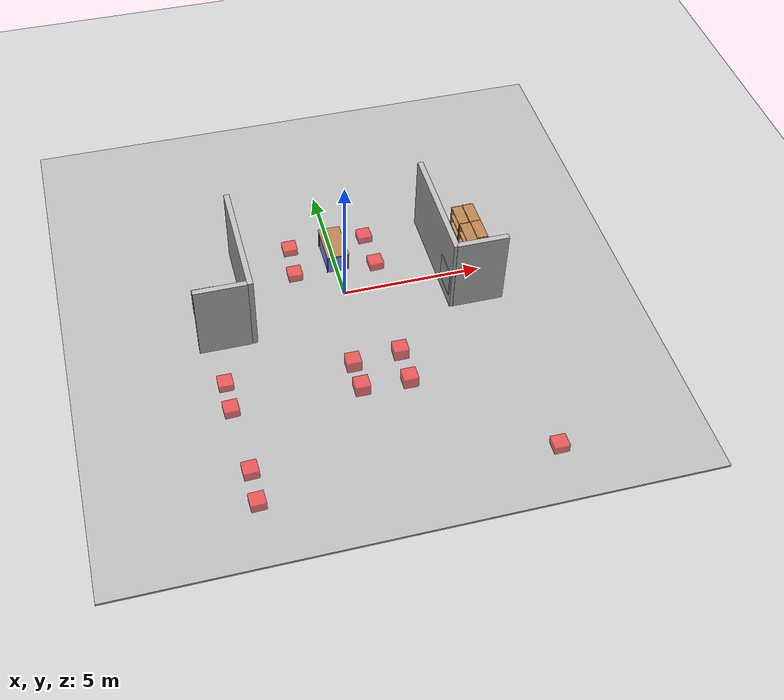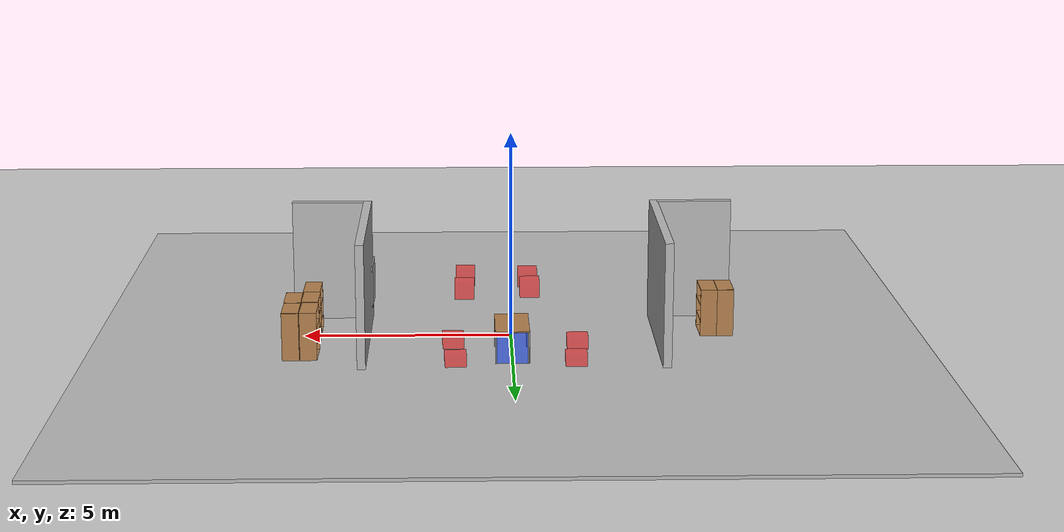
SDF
<sdf version="1.7">
 <world name="library_world">
  <model name="ground_plane">
   <static>1</static>
   <link name="link">
    <collision name="collision">
     <geometry><plane><normal>0 0 1</normal><size>100 100</size></plane></geometry>
     <surface>
      <contact><collide_bitmask>65535</collide_bitmask></contact>
      <friction><ode><mu>100</mu><mu2>50</mu2></ode></friction>
     </surface>
    </collision>
    <visual name="visual">
     <cast_shadows>0</cast_shadows>
     <geometry><plane><normal>0 0 1</normal><size>100 100</size></plane></geometry>
     <material>
      <script><uri>file://media/materials/scripts/gazebo.material</uri><name>Gazebo/Grey</name></script>
     </material>
    </visual>
   </link>
  </model>
  <model name="floor">
   <static>1</static>
   <link name="link">
    <collision name="collision"><geometry><box><size>20 20 0.1</size></box></geometry></collision>
    <visual name="visual"><geometry><box><size>20 20 0.1</size></box></geometry></visual>
   </link>
   <pose>0.030291 -0.166177 0 0 -0 0</pose>
  </model>
  <model name="bookshelf_0_clone_2_clone_27">
   <static>1</static>
   <link name="link">
    <inertial><mass>1</mass></inertial>
    <collision name="back">
     <pose>0 0.005 0.6 0 -0 0</pose>
     <geometry><box><size>0.9 0.01 1.2</size></box></geometry>
    </collision>
    <visual name="visual1">
     <pose>0 0.005 0.6 0 -0 0</pose>
     <geometry><box><size>0.9 0.01 1.2</size></box></geometry>
     <material>
      <script><uri>file://media/materials/scripts/gazebo.material</uri><name>Gazebo/Wood</name></script>
     </material>
    </visual>
    <collision name="left_side">
     <pose>0.45 -0.195 0.6 0 -0 0</pose>
     <geometry><box><size>0.02 0.4 1.2</size></box></geometry>
    </collision>
    <visual name="visual2">
     <pose>0.45 -0.195 0.6 0 -0 0</pose>
     <geometry><box><size>0.02 0.4 1.2</size></box></geometry>
     <material>
      <script><uri>file://media/materials/scripts/gazebo.material</uri><name>Gazebo/Wood</name></script>
     </material>
    </visual>
    <collision name="right_side">
     <pose>-0.45 -0.195 0.6 0 -0 0</pose>
     <geometry><box><size>0.02 0.4 1.2</size></box></geometry>
    </collision>
    <visual name="visual3">
     <pose>-0.45 -0.195 0.6 0 -0 0</pose>
     <geometry><box><size>0.02 0.4 1.2</size></box></geometry>
     <material>
      <script><uri>file://media/materials/scripts/gazebo.material</uri><name>Gazebo/Wood</name></script>
     </material>
    </visual>
    <collision name="bottom">
     <pose>0 -0.195 0.03 0 -0 0</pose>
     <geometry><box><size>0.88 0.4 0.06</size></box></geometry>
    </collision>
    <visual name="visual4">
     <pose>0 -0.195 0.03 0 -0 0</pose>
     <geometry><box><size>0.88 0.4 0.06</size></box></geometry>
     <material>
      <script><uri>file://media/materials/scripts/gazebo.material</uri><name>Gazebo/Wood</name></script>
     </material>
    </visual>
    <collision name="top">
     <pose>0 -0.195 1.19 0 -0 0</pose>
     <geometry><box><size>0.88 0.4 0.02</size></box></geometry>
    </collision>
    <visual name="visual5">
     <pose>0 -0.195 1.19 0 -0 0</pose>
     <geometry><box><size>0.88 0.4 0.02</size></box></geometry>
     <material>
      <script><uri>file://media/materials/scripts/gazebo.material</uri><name>Gazebo/Wood</name></script>
     </material>
    </visual>
    <collision name="low_shelf">
     <pose>0 -0.195 0.43 0 -0 0</pose>
     <geometry><box><size>0.88 0.4 0.02</size></box></geometry>
    </collision>
    <visual name="visual6">
     <pose>0 -0.195 0.43 0 -0 0</pose>
     <geometry><box><size>0.88 0.4 0.02</size></box></geometry>
     <material>
      <script><uri>file://media/materials/scripts/gazebo.material</uri><name>Gazebo/Wood</name></script>
     </material>
    </visual>
    <collision name="high_shelf">
     <pose>0 -0.195 0.8 0 -0 0</pose>
     <geometry><box><size>0.88 0.4 0.02</size></box></geometry>
    </collision>
    <visual name="visual7">
     <pose>0 -0.195 0.8 0 -0 0</pose>
     <geometry><box><size>0.88 0.4 0.02</size></box></geometry>
     <material>
      <script><uri>file://media/materials/scripts/gazebo.material</uri><name>Gazebo/Wood</name></script>
     </material>
    </visual>
   </link>
   <pose>-4.97715 -0.128722 0 0 -0 1.57381</pose>
  </model>
  <model name="bookshelf_0_clone_2_clone_30">
   <static>1</static>
   <link name="link">
    <inertial><mass>1</mass></inertial>
    <collision name="back">
     <pose>0 0.005 0.6 0 -0 0</pose>
     <geometry><box><size>0.9 0.01 1.2</size></box></geometry>
    </collision>
    <visual name="visual1">
     <pose>0 0.005 0.6 0 -0 0</pose>
     <geometry><box><size>0.9 0.01 1.2</size></box></geometry>
     <material>
      <script><uri>file://media/materials/scripts/gazebo.material</uri><name>Gazebo/Wood</name></script>
     </material>
    </visual>
    <collision name="left_side">
     <pose>0.45 -0.195 0.6 0 -0 0</pose>
     <geometry><box><size>0.02 0.4 1.2</size></box></geometry>
    </collision>
    <visual name="visual2">
     <pose>0.45 -0.195 0.6 0 -0 0</pose>
     <geometry><box><size>0.02 0.4 1.2</size></box></geometry>
     <material>
      <script><uri>file://media/materials/scripts/gazebo.material</uri><name>Gazebo/Wood</name></script>
     </material>
    </visual>
    <collision name="right_side">
     <pose>-0.45 -0.195 0.6 0 -0 0</pose>
     <geometry><box><size>0.02 0.4 1.2</size></box></geometry>
    </collision>
    <visual name="visual3">
     <pose>-0.45 -0.195 0.6 0 -0 0</pose>
     <geometry><box><size>0.02 0.4 1.2</size></box></geometry>
     <material>
      <script><uri>file://media/materials/scripts/gazebo.material</uri><name>Gazebo/Wood</name></script>
     </material>
    </visual>
    <collision name="bottom">
     <pose>0 -0.195 0.03 0 -0 0</pose>
     <geometry><box><size>0.88 0.4 0.06</size></box></geometry>
    </collision>
    <visual name="visual4">
     <pose>0 -0.195 0.03 0 -0 0</pose>
     <geometry><box><size>0.88 0.4 0.06</size></box></geometry>
     <material>
      <script><uri>file://media/materials/scripts/gazebo.material</uri><name>Gazebo/Wood</name></script>
     </material>
    </visual>
    <collision name="top">
     <pose>0 -0.195 1.19 0 -0 0</pose>
     <geometry><box><size>0.88 0.4 0.02</size></box></geometry>
    </collision>
    <visual name="visual5">
     <pose>0 -0.195 1.19 0 -0 0</pose>
     <geometry><box><size>0.88 0.4 0.02</size></box></geometry>
     <material>
      <script><uri>file://media/materials/scripts/gazebo.material</uri><name>Gazebo/Wood</name></script>
     </material>
    </visual>
    <collision name="low_shelf">
     <pose>0 -0.195 0.43 0 -0 0</pose>
     <geometry><box><size>0.88 0.4 0.02</size></box></geometry>
    </collision>
    <visual name="visual6">
     <pose>0 -0.195 0.43 0 -0 0</pose>
     <geometry><box><size>0.88 0.4 0.02</size></box></geometry>
     <material>
      <script><uri>file://media/materials/scripts/gazebo.material</uri><name>Gazebo/Wood</name></script>
     </material>
    </visual>
    <collision name="high_shelf">
     <pose>0 -0.195 0.8 0 -0 0</pose>
     <geometry><box><size>0.88 0.4 0.02</size></box></geometry>
    </collision>
    <visual name="visual7">
     <pose>0 -0.195 0.8 0 -0 0</pose>
     <geometry><box><size>0.88 0.4 0.02</size></box></geometry>
     <material>
      <script><uri>file://media/materials/scripts/gazebo.material</uri><name>Gazebo/Wood</name></script>
     </material>
    </visual>
   </link>
   <pose>4.98765 1.69254 0 0 -0 1.57381</pose>
  </model>
  <model name="bookshelf_0_clone_2_clone_31">
   <static>1</static>
   <link name="link">
    <inertial><mass>1</mass></inertial>
    <collision name="back">
     <pose>0 0.005 0.6 0 -0 0</pose>
     <geometry><box><size>0.9 0.01 1.2</size></box></geometry>
    </collision>
    <visual name="visual1">
     <pose>0 0.005 0.6 0 -0 0</pose>
     <geometry><box><size>0.9 0.01 1.2</size></box></geometry>
     <material>
      <script><uri>file://media/materials/scripts/gazebo.material</uri><name>Gazebo/Wood</name></script>
     </material>
    </visual>
    <collision name="left_side">
     <pose>0.45 -0.195 0.6 0 -0 0</pose>
     <geometry><box><size>0.02 0.4 1.2</size></box></geometry>
    </collision>
    <visual name="visual2">
     <pose>0.45 -0.195 0.6 0 -0 0</pose>
     <geometry><box><size>0.02 0.4 1.2</size></box></geometry>
     <material>
      <script><uri>file://media/materials/scripts/gazebo.material</uri><name>Gazebo/Wood</name></script>
     </material>
    </visual>
    <collision name="right_side">
     <pose>-0.45 -0.195 0.6 0 -0 0</pose>
     <geometry><box><size>0.02 0.4 1.2</size></box></geometry>
    </collision>
    <visual name="visual3">
     <pose>-0.45 -0.195 0.6 0 -0 0</pose>
     <geometry><box><size>0.02 0.4 1.2</size></box></geometry>
     <material>
      <script><uri>file://media/materials/scripts/gazebo.material</uri><name>Gazebo/Wood</name></script>
     </material>
    </visual>
    <collision name="bottom">
     <pose>0 -0.195 0.03 0 -0 0</pose>
     <geometry><box><size>0.88 0.4 0.06</size></box></geometry>
    </collision>
    <visual name="visual4">
     <pose>0 -0.195 0.03 0 -0 0</pose>
     <geometry><box><size>0.88 0.4 0.06</size></box></geometry>
     <material>
      <script><uri>file://media/materials/scripts/gazebo.material</uri><name>Gazebo/Wood</name></script>
     </material>
    </visual>
    <collision name="top">
     <pose>0 -0.195 1.19 0 -0 0</pose>
     <geometry><box><size>0.88 0.4 0.02</size></box></geometry>
    </collision>
    <visual name="visual5">
     <pose>0 -0.195 1.19 0 -0 0</pose>
     <geometry><box><size>0.88 0.4 0.02</size></box></geometry>
     <material>
      <script><uri>file://media/materials/scripts/gazebo.material</uri><name>Gazebo/Wood</name></script>
     </material>
    </visual>
    <collision name="low_shelf">
     <pose>0 -0.195 0.43 0 -0 0</pose>
     <geometry><box><size>0.88 0.4 0.02</size></box></geometry>
    </collision>
    <visual name="visual6">
     <pose>0 -0.195 0.43 0 -0 0</pose>
     <geometry><box><size>0.88 0.4 0.02</size></box></geometry>
     <material>
      <script><uri>file://media/materials/scripts/gazebo.material</uri><name>Gazebo/Wood</name></script>
     </material>
    </visual>
    <collision name="high_shelf">
     <pose>0 -0.195 0.8 0 -0 0</pose>
     <geometry><box><size>0.88 0.4 0.02</size></box></geometry>
    </collision>
    <visual name="visual7">
     <pose>0 -0.195 0.8 0 -0 0</pose>
     <geometry><box><size>0.88 0.4 0.02</size></box></geometry>
     <material>
      <script><uri>file://media/materials/scripts/gazebo.material</uri><name>Gazebo/Wood</name></script>
     </material>
    </visual>
   </link>
   <pose>5.00093 0.815391 0 0 -0 1.57381</pose>
  </model>
  <model name="bookshelf_0_clone_8_clone_17_clone_6">
   <static>1</static>
   <link name="link">
    <inertial><mass>1</mass></inertial>
    <collision name="back">
     <pose>0 0.005 0.6 0 -0 0</pose>
     <geometry><box><size>0.9 0.01 1.2</size></box></geometry>
    </collision>
    <visual name="visual1">
     <pose>0 0.005 0.6 0 -0 0</pose>
     <geometry><box><size>0.9 0.01 1.2</size></box></geometry>
     <material>
      <script><uri>file://media/materials/scripts/gazebo.material</uri><name>Gazebo/Wood</name></script>
     </material>
    </visual>
    <collision name="left_side">
     <pose>0.45 -0.195 0.6 0 -0 0</pose>
     <geometry><box><size>0.02 0.4 1.2</size></box></geometry>
    </collision>
    <visual name="visual2">
     <pose>0.45 -0.195 0.6 0 -0 0</pose>
     <geometry><box><size>0.02 0.4 1.2</size></box></geometry>
     <material>
      <script><uri>file://media/materials/scripts/gazebo.material</uri><name>Gazebo/Wood</name></script>
     </material>
    </visual>
    <collision name="right_side">
     <pose>-0.45 -0.195 0.6 0 -0 0</pose>
     <geometry><box><size>0.02 0.4 1.2</size></box></geometry>
    </collision>
    <visual name="visual3">
     <pose>-0.45 -0.195 0.6 0 -0 0</pose>
     <geometry><box><size>0.02 0.4 1.2</size></box></geometry>
     <material>
      <script><uri>file://media/materials/scripts/gazebo.material</uri><name>Gazebo/Wood</name></script>
     </material>
    </visual>
    <collision name="bottom">
     <pose>0 -0.195 0.03 0 -0 0</pose>
     <geometry><box><size>0.88 0.4 0.06</size></box></geometry>
    </collision>
    <visual name="visual4">
     <pose>0 -0.195 0.03 0 -0 0</pose>
     <geometry><box><size>0.88 0.4 0.06</size></box></geometry>
     <material>
      <script><uri>file://media/materials/scripts/gazebo.material</uri><name>Gazebo/Wood</name></script>
     </material>
    </visual>
    <collision name="top">
     <pose>0 -0.195 1.19 0 -0 0</pose>
     <geometry><box><size>0.88 0.4 0.02</size></box></geometry>
    </collision>
    <visual name="visual5">
     <pose>0 -0.195 1.19 0 -0 0</pose>
     <geometry><box><size>0.88 0.4 0.02</size></box></geometry>
     <material>
      <script><uri>file://media/materials/scripts/gazebo.material</uri><name>Gazebo/Wood</name></script>
     </material>
    </visual>
    <collision name="low_shelf">
     <pose>0 -0.195 0.43 0 -0 0</pose>
     <geometry><box><size>0.88 0.4 0.02</size></box></geometry>
    </collision>
    <visual name="visual6">
     <pose>0 -0.195 0.43 0 -0 0</pose>
     <geometry><box><size>0.88 0.4 0.02</size></box></geometry>
     <material>
      <script><uri>file://media/materials/scripts/gazebo.material</uri><name>Gazebo/Wood</name></script>
     </material>
    </visual>
    <collision name="high_shelf">
     <pose>0 -0.195 0.8 0 -0 0</pose>
     <geometry><box><size>0.88 0.4 0.02</size></box></geometry>
    </collision>
    <visual name="visual7">
     <pose>0 -0.195 0.8 0 -0 0</pose>
     <geometry><box><size>0.88 0.4 0.02</size></box></geometry>
     <material>
      <script><uri>file://media/materials/scripts/gazebo.material</uri><name>Gazebo/Wood</name></script>
     </material>
    </visual>
   </link>
   <pose>4.95981 1.67427 0 0 0 -1.57537</pose>
  </model>
  <model name="bookshelf_0_clone_8_clone_17_clone_7">
   <static>1</static>
   <link name="link">
    <inertial><mass>1</mass></inertial>
    <collision name="back">
     <pose>0 0.005 0.6 0 -0 0</pose>
     <geometry><box><size>0.9 0.01 1.2</size></box></geometry>
    </collision>
    <visual name="visual1">
     <pose>0 0.005 0.6 0 -0 0</pose>
     <geometry><box><size>0.9 0.01 1.2</size></box></geometry>
     <material>
      <script><uri>file://media/materials/scripts/gazebo.material</uri><name>Gazebo/Wood</name></script>
     </material>
    </visual>
    <collision name="left_side">
     <pose>0.45 -0.195 0.6 0 -0 0</pose>
     <geometry><box><size>0.02 0.4 1.2</size></box></geometry>
    </collision>
    <visual name="visual2">
     <pose>0.45 -0.195 0.6 0 -0 0</pose>
     <geometry><box><size>0.02 0.4 1.2</size></box></geometry>
     <material>
      <script><uri>file://media/materials/scripts/gazebo.material</uri><name>Gazebo/Wood</name></script>
     </material>
    </visual>
    <collision name="right_side">
     <pose>-0.45 -0.195 0.6 0 -0 0</pose>
     <geometry><box><size>0.02 0.4 1.2</size></box></geometry>
    </collision>
    <visual name="visual3">
     <pose>-0.45 -0.195 0.6 0 -0 0</pose>
     <geometry><box><size>0.02 0.4 1.2</size></box></geometry>
     <material>
      <script><uri>file://media/materials/scripts/gazebo.material</uri><name>Gazebo/Wood</name></script>
     </material>
    </visual>
    <collision name="bottom">
     <pose>0 -0.195 0.03 0 -0 0</pose>
     <geometry><box><size>0.88 0.4 0.06</size></box></geometry>
    </collision>
    <visual name="visual4">
     <pose>0 -0.195 0.03 0 -0 0</pose>
     <geometry><box><size>0.88 0.4 0.06</size></box></geometry>
     <material>
      <script><uri>file://media/materials/scripts/gazebo.material</uri><name>Gazebo/Wood</name></script>
     </material>
    </visual>
    <collision name="top">
     <pose>0 -0.195 1.19 0 -0 0</pose>
     <geometry><box><size>0.88 0.4 0.02</size></box></geometry>
    </collision>
    <visual name="visual5">
     <pose>0 -0.195 1.19 0 -0 0</pose>
     <geometry><box><size>0.88 0.4 0.02</size></box></geometry>
     <material>
      <script><uri>file://media/materials/scripts/gazebo.material</uri><name>Gazebo/Wood</name></script>
     </material>
    </visual>
    <collision name="low_shelf">
     <pose>0 -0.195 0.43 0 -0 0</pose>
     <geometry><box><size>0.88 0.4 0.02</size></box></geometry>
    </collision>
    <visual name="visual6">
     <pose>0 -0.195 0.43 0 -0 0</pose>
     <geometry><box><size>0.88 0.4 0.02</size></box></geometry>
     <material>
      <script><uri>file://media/materials/scripts/gazebo.material</uri><name>Gazebo/Wood</name></script>
     </material>
    </visual>
    <collision name="high_shelf">
     <pose>0 -0.195 0.8 0 -0 0</pose>
     <geometry><box><size>0.88 0.4 0.02</size></box></geometry>
    </collision>
    <visual name="visual7">
     <pose>0 -0.195 0.8 0 -0 0</pose>
     <geometry><box><size>0.88 0.4 0.02</size></box></geometry>
     <material>
      <script><uri>file://media/materials/scripts/gazebo.material</uri><name>Gazebo/Wood</name></script>
     </material>
    </visual>
   </link>
   <pose>4.97893 0.761143 0 0 0 -1.57537</pose>
  </model>
  <model name="bookshelf_0_clone_8_clone_17_clone_8">
   <static>1</static>
   <link name="link">
    <inertial><mass>1</mass></inertial>
    <collision name="back">
     <pose>0 0.005 0.6 0 -0 0</pose>
     <geometry><box><size>0.9 0.01 1.2</size></box></geometry>
    </collision>
    <visual name="visual1">
     <pose>0 0.005 0.6 0 -0 0</pose>
     <geometry><box><size>0.9 0.01 1.2</size></box></geometry>
     <material>
      <script><uri>file://media/materials/scripts/gazebo.material</uri><name>Gazebo/Wood</name></script>
     </material>
    </visual>
    <collision name="left_side">
     <pose>0.45 -0.195 0.6 0 -0 0</pose>
     <geometry><box><size>0.02 0.4 1.2</size></box></geometry>
    </collision>
    <visual name="visual2">
     <pose>0.45 -0.195 0.6 0 -0 0</pose>
     <geometry><box><size>0.02 0.4 1.2</size></box></geometry>
     <material>
      <script><uri>file://media/materials/scripts/gazebo.material</uri><name>Gazebo/Wood</name></script>
     </material>
    </visual>
    <collision name="right_side">
     <pose>-0.45 -0.195 0.6 0 -0 0</pose>
     <geometry><box><size>0.02 0.4 1.2</size></box></geometry>
    </collision>
    <visual name="visual3">
     <pose>-0.45 -0.195 0.6 0 -0 0</pose>
     <geometry><box><size>0.02 0.4 1.2</size></box></geometry>
     <material>
      <script><uri>file://media/materials/scripts/gazebo.material</uri><name>Gazebo/Wood</name></script>
     </material>
    </visual>
    <collision name="bottom">
     <pose>0 -0.195 0.03 0 -0 0</pose>
     <geometry><box><size>0.88 0.4 0.06</size></box></geometry>
    </collision>
    <visual name="visual4">
     <pose>0 -0.195 0.03 0 -0 0</pose>
     <geometry><box><size>0.88 0.4 0.06</size></box></geometry>
     <material>
      <script><uri>file://media/materials/scripts/gazebo.material</uri><name>Gazebo/Wood</name></script>
     </material>
    </visual>
    <collision name="top">
     <pose>0 -0.195 1.19 0 -0 0</pose>
     <geometry><box><size>0.88 0.4 0.02</size></box></geometry>
    </collision>
    <visual name="visual5">
     <pose>0 -0.195 1.19 0 -0 0</pose>
     <geometry><box><size>0.88 0.4 0.02</size></box></geometry>
     <material>
      <script><uri>file://media/materials/scripts/gazebo.material</uri><name>Gazebo/Wood</name></script>
     </material>
    </visual>
    <collision name="low_shelf">
     <pose>0 -0.195 0.43 0 -0 0</pose>
     <geometry><box><size>0.88 0.4 0.02</size></box></geometry>
    </collision>
    <visual name="visual6">
     <pose>0 -0.195 0.43 0 -0 0</pose>
     <geometry><box><size>0.88 0.4 0.02</size></box></geometry>
     <material>
      <script><uri>file://media/materials/scripts/gazebo.material</uri><name>Gazebo/Wood</name></script>
     </material>
    </visual>
    <collision name="high_shelf">
     <pose>0 -0.195 0.8 0 -0 0</pose>
     <geometry><box><size>0.88 0.4 0.02</size></box></geometry>
    </collision>
    <visual name="visual7">
     <pose>0 -0.195 0.8 0 -0 0</pose>
     <geometry><box><size>0.88 0.4 0.02</size></box></geometry>
     <material>
      <script><uri>file://media/materials/scripts/gazebo.material</uri><name>Gazebo/Wood</name></script>
     </material>
    </visual>
   </link>
   <pose>4.99263 -0.149601 0 0 0 -1.57537</pose>
  </model>
  <model name="bookshelf_0_clone_8_clone_17_clone_13">
   <static>1</static>
   <link name="link">
    <inertial><mass>1</mass></inertial>
    <collision name="back">
     <pose>0 0.005 0.6 0 -0 0</pose>
     <geometry><box><size>0.9 0.01 1.2</size></box></geometry>
    </collision>
    <visual name="visual1">
     <pose>0 0.005 0.6 0 -0 0</pose>
     <geometry><box><size>0.9 0.01 1.2</size></box></geometry>
     <material>
      <script><uri>file://media/materials/scripts/gazebo.material</uri><name>Gazebo/Wood</name></script>
     </material>
    </visual>
    <collision name="left_side">
     <pose>0.45 -0.195 0.6 0 -0 0</pose>
     <geometry><box><size>0.02 0.4 1.2</size></box></geometry>
    </collision>
    <visual name="visual2">
     <pose>0.45 -0.195 0.6 0 -0 0</pose>
     <geometry><box><size>0.02 0.4 1.2</size></box></geometry>
     <material>
      <script><uri>file://media/materials/scripts/gazebo.material</uri><name>Gazebo/Wood</name></script>
     </material>
    </visual>
    <collision name="right_side">
     <pose>-0.45 -0.195 0.6 0 -0 0</pose>
     <geometry><box><size>0.02 0.4 1.2</size></box></geometry>
    </collision>
    <visual name="visual3">
     <pose>-0.45 -0.195 0.6 0 -0 0</pose>
     <geometry><box><size>0.02 0.4 1.2</size></box></geometry>
     <material>
      <script><uri>file://media/materials/scripts/gazebo.material</uri><name>Gazebo/Wood</name></script>
     </material>
    </visual>
    <collision name="bottom">
     <pose>0 -0.195 0.03 0 -0 0</pose>
     <geometry><box><size>0.88 0.4 0.06</size></box></geometry>
    </collision>
    <visual name="visual4">
     <pose>0 -0.195 0.03 0 -0 0</pose>
     <geometry><box><size>0.88 0.4 0.06</size></box></geometry>
     <material>
      <script><uri>file://media/materials/scripts/gazebo.material</uri><name>Gazebo/Wood</name></script>
     </material>
    </visual>
    <collision name="top">
     <pose>0 -0.195 1.19 0 -0 0</pose>
     <geometry><box><size>0.88 0.4 0.02</size></box></geometry>
    </collision>
    <visual name="visual5">
     <pose>0 -0.195 1.19 0 -0 0</pose>
     <geometry><box><size>0.88 0.4 0.02</size></box></geometry>
     <material>
      <script><uri>file://media/materials/scripts/gazebo.material</uri><name>Gazebo/Wood</name></script>
     </material>
    </visual>
    <collision name="low_shelf">
     <pose>0 -0.195 0.43 0 -0 0</pose>
     <geometry><box><size>0.88 0.4 0.02</size></box></geometry>
    </collision>
    <visual name="visual6">
     <pose>0 -0.195 0.43 0 -0 0</pose>
     <geometry><box><size>0.88 0.4 0.02</size></box></geometry>
     <material>
      <script><uri>file://media/materials/scripts/gazebo.material</uri><name>Gazebo/Wood</name></script>
     </material>
    </visual>
    <collision name="high_shelf">
     <pose>0 -0.195 0.8 0 -0 0</pose>
     <geometry><box><size>0.88 0.4 0.02</size></box></geometry>
    </collision>
    <visual name="visual7">
     <pose>0 -0.195 0.8 0 -0 0</pose>
     <geometry><box><size>0.88 0.4 0.02</size></box></geometry>
     <material>
      <script><uri>file://media/materials/scripts/gazebo.material</uri><name>Gazebo/Wood</name></script>
     </material>
    </visual>
   </link>
   <pose>-4.98731 -0.125446 0 0 0 -1.57537</pose>
  </model>
  <model name="book_2_clone_clone_1_clone_clone_0">
   <static>1</static>
   <link name="link">
    <visual name="visual"><geometry><box><size>0.221094 0.032318 0.244099</size></box></geometry></visual>
   </link>
   <pose>4.86614 0.773915 0.179005 0 -0 0</pose>
  </model>
  <model name="book_2_clone_clone_5">
   <static>1</static>
   <link name="link">
    <visual name="visual"><geometry><box><size>0.221094 0.032318 0.244099</size></box></geometry></visual>
   </link>
   <pose>4.80755 -0.24542 0.934382 0 -0 0</pose>
  </model>
  <model name="table_clone_0">
   <static>1</static>
   <link name="link">
    <collision name="surface">
     <pose>0 0 1 0 -0 0</pose>
     <geometry><box><size>1.5 0.8 0.03</size></box></geometry>
     <surface><friction><ode><mu>0.6</mu><mu2>0.6</mu2></ode></friction></surface>
    </collision>
    <visual name="visual1">
     <pose>0 0 1 0 -0 0</pose>
     <geometry><box><size>1.5 0.8 0.03</size></box></geometry>
     <material>
      <script><uri>file://media/materials/scripts/gazebo.material</uri><name>Gazebo/Wood</name></script>
     </material>
    </visual>
    <collision name="front_left_leg">
     <pose>0.68 0.38 0.5 0 -0 0</pose>
     <geometry><cylinder><radius>0.02</radius><length>1</length></cylinder></geometry>
    </collision>
    <visual name="front_left_leg">
     <pose>0.68 0.38 0.5 0 -0 0</pose>
     <geometry><cylinder><radius>0.02</radius><length>1</length></cylinder></geometry>
     <material>
      <script><uri>file://media/materials/scripts/gazebo.material</uri><name>Gazebo/Grey</name></script>
     </material>
    </visual>
    <collision name="front_right_leg">
     <pose>0.68 -0.38 0.5 0 -0 0</pose>
     <geometry><cylinder><radius>0.02</radius><length>1</length></cylinder></geometry>
    </collision>
    <visual name="front_right_leg">
     <pose>0.68 -0.38 0.5 0 -0 0</pose>
     <geometry><cylinder><radius>0.02</radius><length>1</length></cylinder></geometry>
     <material>
      <script><uri>file://media/materials/scripts/gazebo.material</uri><name>Gazebo/Grey</name></script>
     </material>
    </visual>
    <collision name="back_right_leg">
     <pose>-0.68 -0.38 0.5 0 -0 0</pose>
     <geometry><cylinder><radius>0.02</radius><length>1</length></cylinder></geometry>
    </collision>
    <visual name="back_right_leg">
     <pose>-0.68 -0.38 0.5 0 -0 0</pose>
     <geometry><cylinder><radius>0.02</radius><length>1</length></cylinder></geometry>
     <material>
      <script><uri>file://media/materials/scripts/gazebo.material</uri><name>Gazebo/Grey</name></script>
     </material>
    </visual>
    <collision name="back_left_leg">
     <pose>-0.68 0.38 0.5 0 -0 0</pose>
     <geometry><cylinder><radius>0.02</radius><length>1</length></cylinder></geometry>
    </collision>
    <visual name="back_left_leg">
     <pose>-0.68 0.38 0.5 0 -0 0</pose>
     <geometry><cylinder><radius>0.02</radius><length>1</length></cylinder></geometry>
     <material>
      <script><uri>file://media/materials/scripts/gazebo.material</uri><name>Gazebo/Grey</name></script>
     </material>
    </visual>
   </link>
   <pose>0.013318 1.77697 -0.174161 -0.000869 2e-06 -1.56857</pose>
  </model>
  <model name="wall_front_right_clone_clone_clone">
   <static>1</static>
   <link name="link">
    <visual name="visual"><geometry><box><size>1.82991 0.2 3</size></box></geometry></visual>
   </link>
   <pose>-4.55262 -1.46941 1.5 0 -0 0</pose>
  </model>
  <model name="wall_left_clone_clone_clone">
   <static>1</static>
   <link name="link">
    <visual name="visual"><geometry><box><size>0.2 4.41332 3</size></box></geometry></visual>
   </link>
   <pose>3.50488 0.647061 1.5 0 -0 0</pose>
  </model>
  <model name="wall_left_clone_clone_clone_0">
   <static>1</static>
   <link name="link">
    <visual name="visual"><geometry><box><size>0.2 4.41332 3</size></box></geometry></visual>
   </link>
   <pose>-3.55657 0.648416 1.5 0 -0 0</pose>
  </model>
  <model name="wall_front_right_clone_clone_clone_clone">
   <static>1</static>
   <link name="link">
    <visual name="visual"><geometry><box><size>1.82991 0.2 3</size></box></geometry></visual>
   </link>
   <pose>4.43942 -1.46965 1.5 0 -0 0</pose>
  </model>
  <model name="nav_visible_block_Chair_clone_9">
   <static>1</static>
   <pose>5.02197 -8.17633 0.116265 0 -0 0</pose>
   <link name="link">
    <collision name="collision">
     <geometry><box><size>0.499999 0.5 0.5</size></box></geometry>
     <surface>
      <contact><collide_bitmask>65535</collide_bitmask></contact>
      <friction><ode><mu>1</mu><mu2>1</mu2></ode></friction>
     </surface>
    </collision>
    <visual name="visual">
     <transparency>0.35</transparency>
     <geometry><box><size>0.499999 0.5 0.5</size></box></geometry>
     <material><ambient>1 0.15 0.15 1</ambient><diffuse>1 0.15 0.15 1</diffuse></material>
    </visual>
   </link>
  </model>
  <model name="nav_visible_block_Chair_clone_14">
   <static>1</static>
   <pose>-4.8744 -3.15565 0.090718 0 -0 0</pose>
   <link name="link">
    <collision name="collision">
     <geometry><box><size>0.5 0.5 0.5</size></box></geometry>
     <surface>
      <contact><collide_bitmask>65535</collide_bitmask></contact>
      <friction><ode><mu>1</mu><mu2>1</mu2></ode></friction>
     </surface>
    </collision>
    <visual name="visual">
     <transparency>0.35</transparency>
     <geometry><box><size>0.5 0.5 0.5</size></box></geometry>
     <material><ambient>1 0.15 0.15 1</ambient><diffuse>1 0.15 0.15 1</diffuse></material>
    </visual>
   </link>
  </model>
  <model name="nav_visible_block_Chair_clone_14_clone">
   <static>1</static>
   <pose>-4.8854 -4.26565 0.123068 0 0 -3.09777</pose>
   <link name="link">
    <collision name="collision">
     <geometry><box><size>0.500001 0.5 0.5</size></box></geometry>
     <surface>
      <contact><collide_bitmask>65535</collide_bitmask></contact>
      <friction><ode><mu>1</mu><mu2>1</mu2></ode></friction>
     </surface>
    </collision>
    <visual name="visual">
     <transparency>0.35</transparency>
     <geometry><box><size>0.500001 0.5 0.5</size></box></geometry>
     <material><ambient>1 0.15 0.15 1</ambient><diffuse>1 0.15 0.15 1</diffuse></material>
    </visual>
   </link>
  </model>
  <model name="nav_visible_block_Chair_clone_14_clone_4">
   <static>1</static>
   <pose>-4.73378 -6.78606 0.149155 0 0 -3.09777</pose>
   <link name="link">
    <collision name="collision">
     <geometry><box><size>0.500001 0.5 0.5</size></box></geometry>
     <surface>
      <contact><collide_bitmask>65535</collide_bitmask></contact>
      <friction><ode><mu>1</mu><mu2>1</mu2></ode></friction>
     </surface>
    </collision>
    <visual name="visual">
     <transparency>0.35</transparency>
     <geometry><box><size>0.500001 0.5 0.5</size></box></geometry>
     <material><ambient>1 0.15 0.15 1</ambient><diffuse>1 0.15 0.15 1</diffuse></material>
    </visual>
   </link>
  </model>
  <model name="nav_visible_block_Chair_clone_14_clone_5">
   <static>1</static>
   <pose>-4.74338 -7.97038 0.141122 0 0 -3.09777</pose>
   <link name="link">
    <collision name="collision">
     <geometry><box><size>0.5 0.5 0.5</size></box></geometry>
     <surface>
      <contact><collide_bitmask>65535</collide_bitmask></contact>
      <friction><ode><mu>1</mu><mu2>1</mu2></ode></friction>
     </surface>
    </collision>
    <visual name="visual">
     <transparency>0.35</transparency>
     <geometry><box><size>0.5 0.5 0.5</size></box></geometry>
     <material><ambient>1 0.15 0.15 1</ambient><diffuse>1 0.15 0.15 1</diffuse></material>
    </visual>
   </link>
  </model>
  <model name="nav_visible_block_Chair_clone_14_clone_14">
   <static>1</static>
   <pose>1.39956 1.03221 0.115723 0 0 -3.09777</pose>
   <link name="link">
    <collision name="collision">
     <geometry><box><size>0.499999 0.5 0.5</size></box></geometry>
     <surface>
      <contact><collide_bitmask>65535</collide_bitmask></contact>
      <friction><ode><mu>1</mu><mu2>1</mu2></ode></friction>
     </surface>
    </collision>
    <visual name="visual">
     <transparency>0.35</transparency>
     <geometry><box><size>0.499999 0.5 0.5</size></box></geometry>
     <material><ambient>1 0.15 0.15 1</ambient><diffuse>1 0.15 0.15 1</diffuse></material>
    </visual>
   </link>
  </model>
  <model name="nav_visible_block_Chair_clone_14_clone_15">
   <static>1</static>
   <pose>1.3362 2.4698 0.078016 0 0 -3.09777</pose>
   <link name="link">
    <collision name="collision">
     <geometry><box><size>0.5 0.5 0.5</size></box></geometry>
     <surface>
      <contact><collide_bitmask>65535</collide_bitmask></contact>
      <friction><ode><mu>1</mu><mu2>1</mu2></ode></friction>
     </surface>
    </collision>
    <visual name="visual">
     <transparency>0.35</transparency>
     <geometry><box><size>0.5 0.5 0.5</size></box></geometry>
     <material><ambient>1 0.15 0.15 1</ambient><diffuse>1 0.15 0.15 1</diffuse></material>
    </visual>
   </link>
  </model>
  <model name="nav_visible_block_Chair_clone_0_clone">
   <static>1</static>
   <pose>-1.5601 1.18331 0.101702 0 -0 0</pose>
   <link name="link">
    <collision name="collision">
     <geometry><box><size>0.5 0.5 0.5</size></box></geometry>
     <surface>
      <contact><collide_bitmask>65535</collide_bitmask></contact>
      <friction><ode><mu>1</mu><mu2>1</mu2></ode></friction>
     </surface>
    </collision>
    <visual name="visual">
     <transparency>0.35</transparency>
     <geometry><box><size>0.5 0.5 0.5</size></box></geometry>
     <material><ambient>1 0.15 0.15 1</ambient><diffuse>1 0.15 0.15 1</diffuse></material>
    </visual>
   </link>
  </model>
  <model name="nav_visible_block_Chair_clone_0_clone_0">
   <static>1</static>
   <pose>-1.47256 2.47746 0.081173 0 -0 0</pose>
   <link name="link">
    <collision name="collision">
     <geometry><box><size>0.5 0.5 0.5</size></box></geometry>
     <surface>
      <contact><collide_bitmask>65535</collide_bitmask></contact>
      <friction><ode><mu>1</mu><mu2>1</mu2></ode></friction>
     </surface>
    </collision>
    <visual name="visual">
     <transparency>0.35</transparency>
     <geometry><box><size>0.5 0.5 0.5</size></box></geometry>
     <material><ambient>1 0.15 0.15 1</ambient><diffuse>1 0.15 0.15 1</diffuse></material>
    </visual>
   </link>
  </model>
  <model name="nav_visible_block_OfficeChairBlue_clone_clone_0">
   <static>1</static>
   <pose>1.10792 -4.48318 0.25 0 -0 0</pose>
   <link name="link">
    <collision name="collision">
     <geometry><box><size>0.5 0.5 0.5</size></box></geometry>
     <surface>
      <contact><collide_bitmask>65535</collide_bitmask></contact>
      <friction><ode><mu>1</mu><mu2>1</mu2></ode></friction>
     </surface>
    </collision>
    <visual name="visual">
     <transparency>0.35</transparency>
     <geometry><box><size>0.5 0.5 0.5</size></box></geometry>
     <material><ambient>1 0.15 0.15 1</ambient><diffuse>1 0.15 0.15 1</diffuse></material>
    </visual>
   </link>
  </model>
  <model name="nav_visible_block_OfficeChairBlue_clone_clone_1">
   <static>1</static>
   <pose>-0.550451 -3.36384 0.25 0 -0 0</pose>
   <link name="link">
    <collision name="collision">
     <geometry><box><size>0.5 0.5 0.5</size></box></geometry>
     <surface>
      <contact><collide_bitmask>65535</collide_bitmask></contact>
      <friction><ode><mu>1</mu><mu2>1</mu2></ode></friction>
     </surface>
    </collision>
    <visual name="visual">
     <transparency>0.35</transparency>
     <geometry><box><size>0.5 0.5 0.5</size></box></geometry>
     <material><ambient>1 0.15 0.15 1</ambient><diffuse>1 0.15 0.15 1</diffuse></material>
    </visual>
   </link>
  </model>
  <model name="nav_visible_block_OfficeChairBlue_clone_clone_2">
   <static>1</static>
   <pose>-0.522515 -4.42 0.25 0 -0 0</pose>
   <link name="link">
    <collision name="collision">
     <geometry><box><size>0.5 0.5 0.5</size></box></geometry>
     <surface>
      <contact><collide_bitmask>65535</collide_bitmask></contact>
      <friction><ode><mu>1</mu><mu2>1</mu2></ode></friction>
     </surface>
    </collision>
    <visual name="visual">
     <transparency>0.35</transparency>
     <geometry><box><size>0.5 0.5 0.5</size></box></geometry>
     <material><ambient>1 0.15 0.15 1</ambient><diffuse>1 0.15 0.15 1</diffuse></material>
    </visual>
   </link>
  </model>
  <model name="nav_visible_block_OfficeChairBlue_clone_clone_0_clone">
   <static>1</static>
   <pose>1.12972 -3.24707 0.25 0 -0 1.54892</pose>
   <link name="link">
    <collision name="collision">
     <geometry><box><size>0.500001 0.5 0.5</size></box></geometry>
     <surface>
      <contact><collide_bitmask>65535</collide_bitmask></contact>
      <friction><ode><mu>1</mu><mu2>1</mu2></ode></friction>
     </surface>
    </collision>
    <visual name="visual">
     <transparency>0.35</transparency>
     <geometry><box><size>0.500001 0.5 0.5</size></box></geometry>
     <material><ambient>1 0.15 0.15 1</ambient><diffuse>1 0.15 0.15 1</diffuse></material>
    </visual>
   </link>
  </model>
  <model name="nav_visible_block_table_clone_3_clone_2">
   <static>1</static>
   <pose>0.017434 1.7745 0.25 0 0 -1.56857</pose>
   <link name="link">
    <collision name="collision">
     <geometry><box><size>1.36858 0.75 1.11496</size></box></geometry>
     <surface>
      <contact><collide_bitmask>65535</collide_bitmask></contact>
      <friction><ode><mu>1</mu><mu2>1</mu2></ode></friction>
     </surface>
    </collision>
    <visual name="visual">
     <transparency>0.35</transparency>
     <geometry><box><size>1.36858 0.75 1.11496</size></box></geometry>
     <material><ambient>0.1 0.3 1 1</ambient><diffuse>0.1 0.3 1 1</diffuse></material>
    </visual>
   </link>
  </model>
  <model name="qr_bookshelf_right">
   <static>1</static>
   <link name="qr_board_link">
    <collision name="qr_board_collision">
     <geometry><box><size>1.00913 0.03 1.02908</size></box></geometry>
    </collision>
    <visual name="qr_board_visual">
     <geometry><box><size>1.00913 0.03 1.02908</size></box></geometry>
     <material>
      <script>
       <uri>model://qr_bookshelf_right/materials/scripts</uri>
       <uri>model://qr_bookshelf_right/materials/textures</uri>
       <name>QR/BookshelfRight</name>
      </script>
     </material>
    </visual>
   </link>
   <pose>3.37539 -0.977305 1.09277 0 0 -1.5883</pose>
  </model>
 </world>
</sdf>
